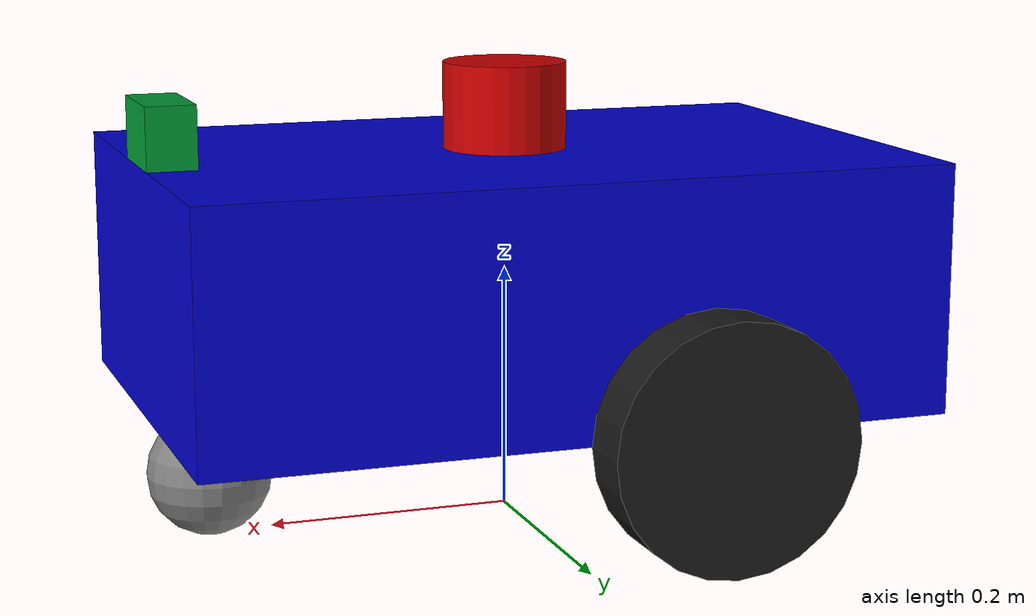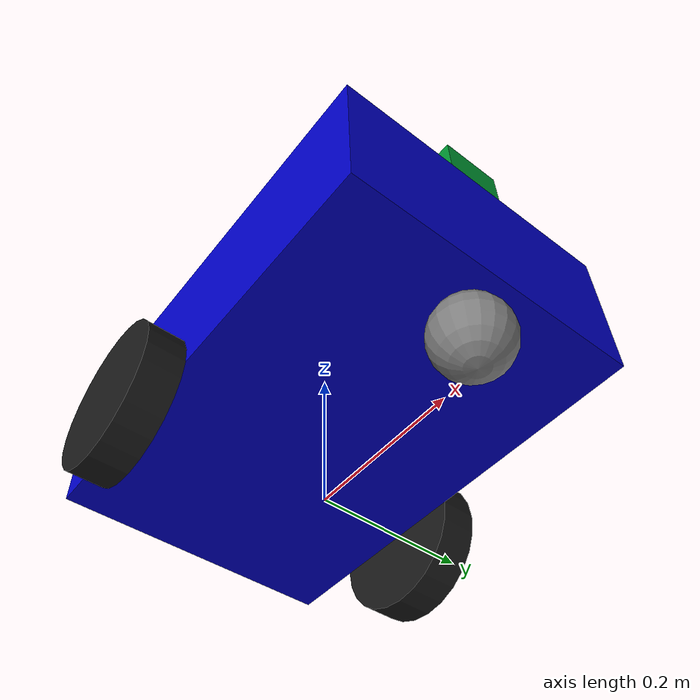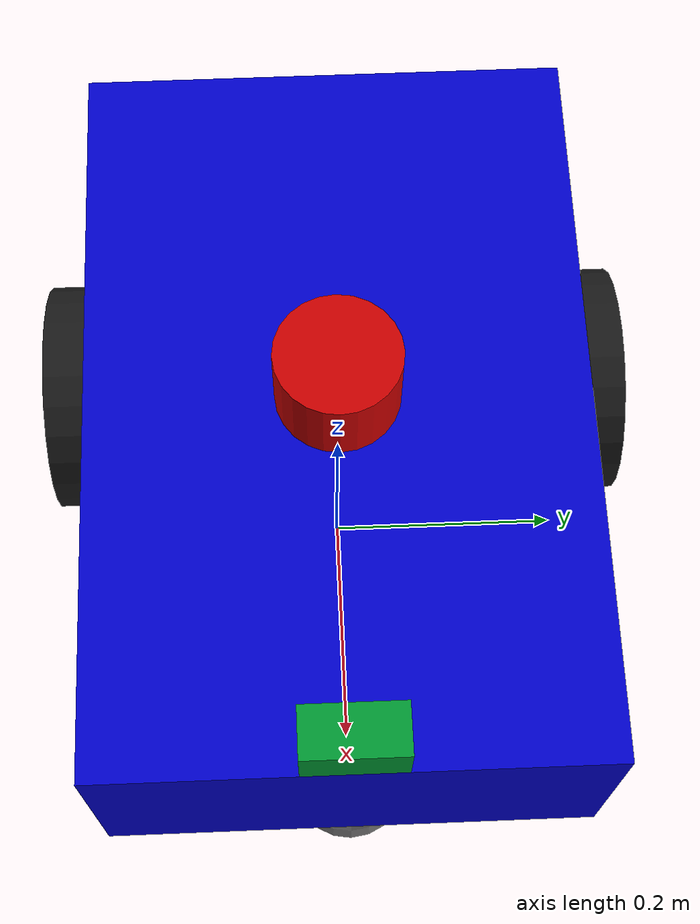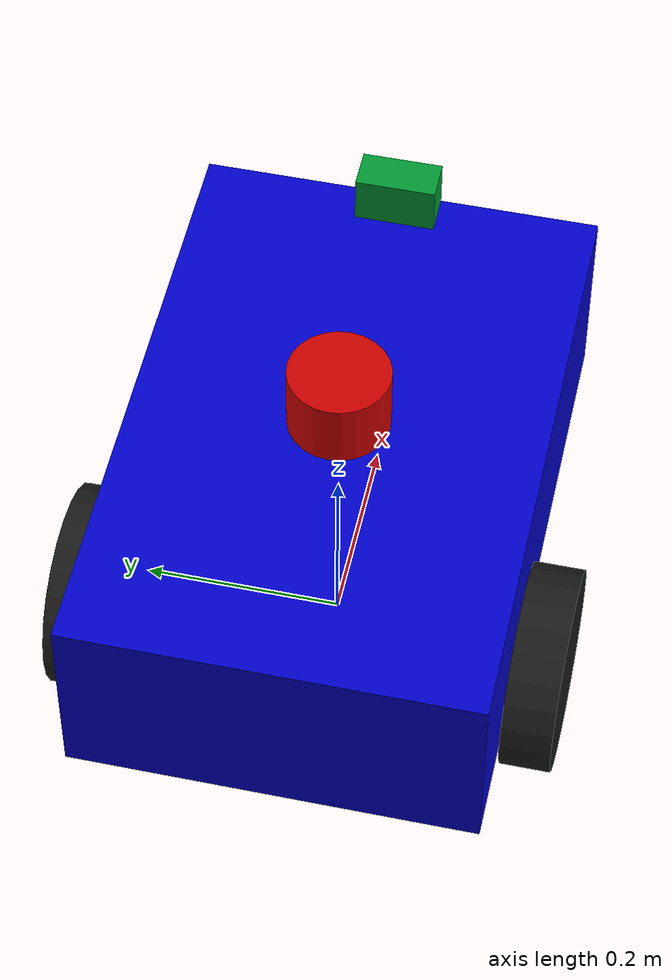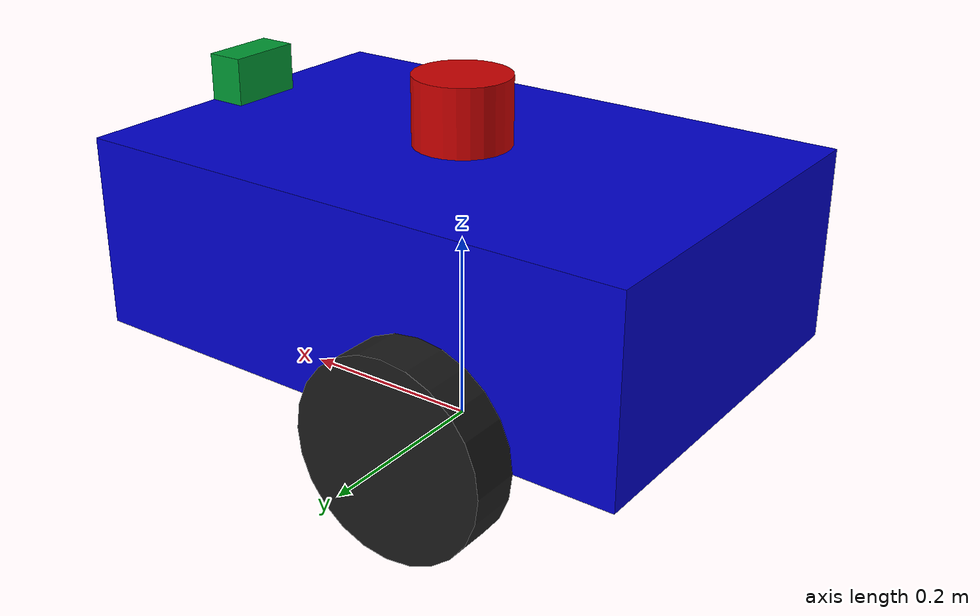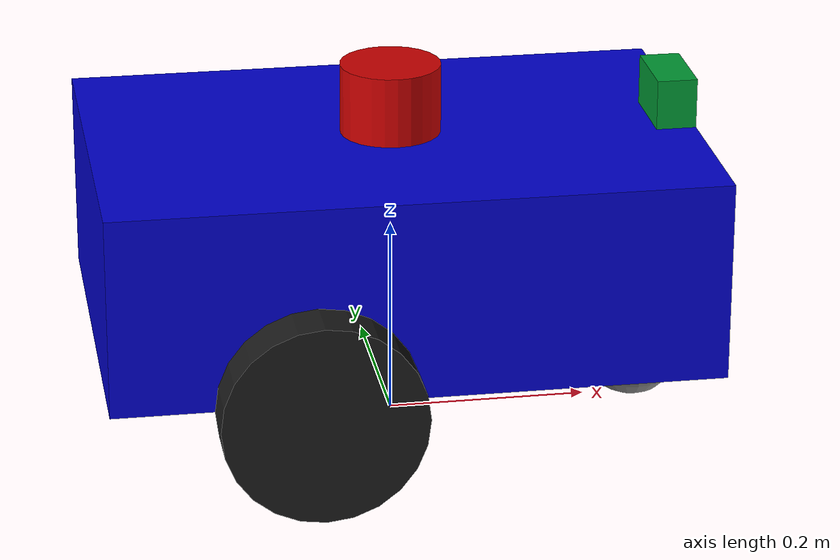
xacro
<?xml version="1.0"?>
<robot xmlns:xacro="http://www.ros.org/wiki/xacro" name="warehouse_bot">

  <xacro:property name="base_width" value="0.4"/>
  <xacro:property name="base_length" value="0.6"/>
  <xacro:property name="base_height" value="0.2"/>

  <xacro:property name="wheel_radius" value="0.1"/>
  <xacro:property name="wheel_width" value="0.05"/>
  <xacro:property name="wheel_separation" value="0.45"/>

  <xacro:property name="caster_radius" value="0.05"/>

  <xacro:property name="lidar_radius" value="0.05"/>
  <xacro:property name="lidar_height" value="0.07"/>
  <xacro:property name="camera_width" value="0.08"/>
  <xacro:property name="camera_length" value="0.04"/>
  <xacro:property name="camera_height" value="0.05"/>

  <xacro:include filename="$(find warehouse_pkg)/urdf/warehouse_bot.gazebo"/>

  <link name="base_link">
    <visual>
      <geometry>
        <box size="${base_length} ${base_width} ${base_height}"/>
      </geometry>
      <origin xyz="0 0 0" rpy="0 0 0"/>
      <material name="blue">
        <color rgba="0 0 0.8 1"/>
      </material>
    </visual>

    <collision>
      <geometry>
        <box size="${base_length} ${base_width} ${base_height}"/>
      </geometry>
      <origin xyz="0 0 0" rpy="0 0 0"/>
    </collision>

    <inertial>
      <mass value="10.0"/>
      <origin xyz="0 0 0" rpy="0 0 0"/>
      <inertia ixx="0.1" ixy="0.0" ixz="0.0"
               iyy="0.1" iyz="0.0" izz="0.1"/>
    </inertial>
  </link>

  <link name="base_footprint"/>

  <joint name="base_footprint_joint" type="fixed">
    <parent link="base_footprint"/>
    <child link="base_link"/>
    <origin xyz="0 0 ${base_height/2 + wheel_radius}" rpy="0 0 0"/>
  </joint>

  <link name="left_wheel_link">
    <visual>
      <geometry>
        <cylinder radius="${wheel_radius}" length="${wheel_width}"/>
      </geometry>
      <origin xyz="0 0 0" rpy="${pi/2} 0 0"/>
      <material name="black">
        <color rgba="0.1 0.1 0.1 1"/>
      </material>
    </visual>

    <collision>
      <geometry>
        <cylinder radius="${wheel_radius}" length="${wheel_width}"/>
      </geometry>
      <origin xyz="0 0 0" rpy="${pi/2} 0 0"/>
    </collision>

    <inertial>
      <mass value="1.0"/>
      <origin xyz="0 0 0" rpy="${pi/2} 0 0"/>
      <inertia ixx="0.01" ixy="0.0" ixz="0.0"
               iyy="0.01" iyz="0.0" izz="0.01"/>
    </inertial>
  </link>

  <joint name="left_wheel_joint" type="continuous">
   <parent link="base_link"/>
   <child link="left_wheel_link"/>
   <origin xyz="-0.1 ${wheel_separation/2} ${-base_height/2}" rpy="0 0 0"/>
   <axis xyz="0 1 0"/>
  </joint>

  <link name="right_wheel_link">
    <visual>
      <geometry>
        <cylinder radius="${wheel_radius}" length="${wheel_width}"/>
      </geometry>
      <origin xyz="0 0 0" rpy="${pi/2} 0 0"/>
      <material name="black">
        <color rgba="0.1 0.1 0.1 1"/>
      </material>
    </visual>

    <collision>
      <geometry>
        <cylinder radius="${wheel_radius}" length="${wheel_width}"/>
      </geometry>
      <origin xyz="0 0 0" rpy="${pi/2} 0 0"/>
    </collision>

    <inertial>
      <mass value="1.0"/>
      <origin xyz="0 0 0" rpy="${pi/2} 0 0"/>
      <inertia ixx="0.01" ixy="0.0" ixz="0.0"
               iyy="0.01" iyz="0.0" izz="0.01"/>
    </inertial>
  </link>

  <joint name="right_wheel_joint" type="continuous">
   <parent link="base_link"/>
   <child link="right_wheel_link"/>
   <origin xyz="-0.1 ${-wheel_separation/2} ${-base_height/2}" rpy="0 0 0"/>
   <axis xyz="0 1 0"/>
  </joint>

  <link name="caster_link">
    <visual>
      <geometry>
        <sphere radius="${caster_radius}"/>
      </geometry>
      <origin xyz="0 0 0" rpy="0 0 0"/>
      <material name="gray">
        <color rgba="0.5 0.5 0.5 1"/>
      </material>
    </visual>

    <collision>
      <geometry>
        <sphere radius="${caster_radius}"/>
      </geometry>
      <origin xyz="0 0 0" rpy="0 0 0"/>
    </collision>

    <inertial>
      <mass value="0.5"/>
      <origin xyz="0 0 0" rpy="0 0 0"/>
      <inertia ixx="0.001" ixy="0.0" ixz="0.0"
               iyy="0.001" iyz="0.0" izz="0.001"/>
    </inertial>
  </link>

  <joint name="caster_joint" type="fixed">
    <parent link="base_link"/>
    <child link="caster_link"/>
    <origin xyz="${base_length/2 - caster_radius} 0 ${-base_height/2 - wheel_radius + caster_radius}" rpy="0 0 0"/>
  </joint>

  <link name="lidar_link">
    <visual>
      <geometry>
        <cylinder radius="${lidar_radius}" length="${lidar_height}"/>
      </geometry>
      <origin xyz="0 0 0" rpy="0 0 0"/>
      <material name="red">
        <color rgba="0.8 0 0 1"/>
      </material>
    </visual>

    <collision>
      <geometry>
        <cylinder radius="${lidar_radius}" length="${lidar_height}"/>
      </geometry>
      <origin xyz="0 0 0" rpy="0 0 0"/>
    </collision>

    <inertial>
      <mass value="0.3"/>
      <origin xyz="0 0 0" rpy="0 0 0"/>
      <inertia ixx="0.001" ixy="0.0" ixz="0.0"
               iyy="0.001" iyz="0.0" izz="0.001"/>
    </inertial>
  </link>

  <joint name="lidar_joint" type="fixed">
    <parent link="base_link"/>
    <child link="lidar_link"/>
    <origin xyz="0 0 ${base_height/2 + lidar_height/2}" rpy="0 0 0"/>
  </joint>

  <link name="camera_link">
    <visual>
      <geometry>
        <box size="${camera_length} ${camera_width} ${camera_height}"/>
      </geometry>
      <origin xyz="0 0 0" rpy="0 0 0"/>
      <material name="green">
        <color rgba="0 0.6 0.2 1"/>
      </material>
    </visual>

    <collision>
      <geometry>
        <box size="${camera_length} ${camera_width} ${camera_height}"/>
      </geometry>
      <origin xyz="0 0 0" rpy="0 0 0"/>
    </collision>

    <inertial>
      <mass value="0.2"/>
      <origin xyz="0 0 0" rpy="0 0 0"/>
      <inertia ixx="0.0002" ixy="0.0" ixz="0.0"
               iyy="0.0002" iyz="0.0" izz="0.0002"/>
    </inertial>
  </link>

  <joint name="camera_joint" type="fixed">
    <parent link="base_link"/>
    <child link="camera_link"/>
    <origin xyz="${base_length/2 - camera_length/2} 0 ${base_height/2 + camera_height/2}" rpy="0 0 0"/>
  </joint>

</robot>
